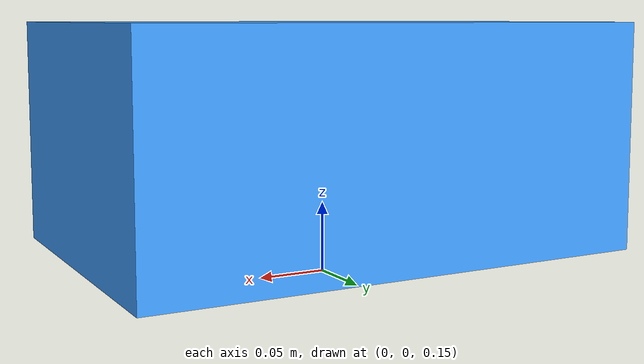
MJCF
<mujoco model="minimal">
  <option timestep="0.01"/>
  <worldbody>
    <light name="key" pos="2 -3 4" dir="-0.4 0.6 -1"/>
    <body name="box" pos="0 0 0.25">
      <joint name="hinge" type="hinge" axis="0 1 0" range="-1.57 1.57"/>
      <geom type="box" size="0.18 0.12 0.08" rgba="0.25 0.62 1 1"/>
    </body>
  </worldbody>
  <actuator>
    <position name="hinge_act" joint="hinge" kp="25"/>
  </actuator>
</mujoco>
